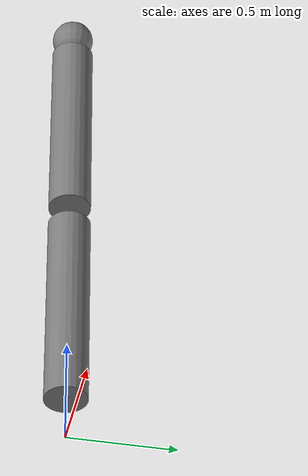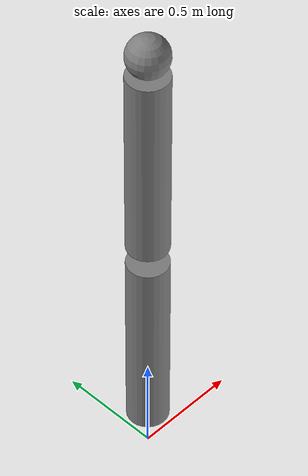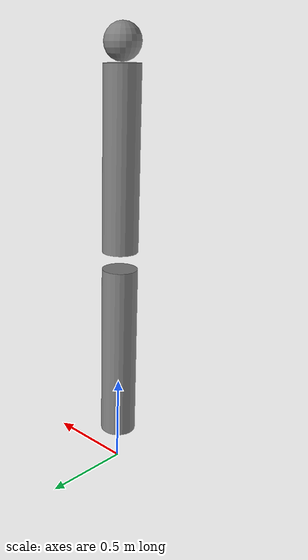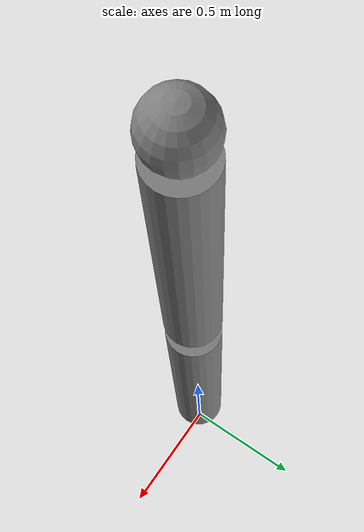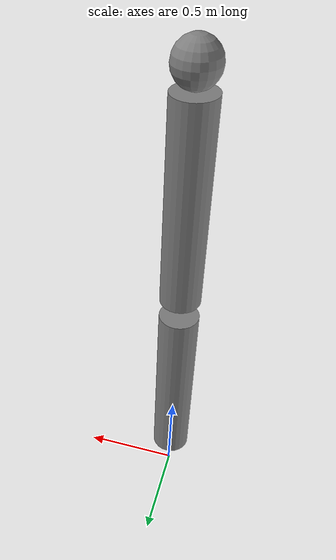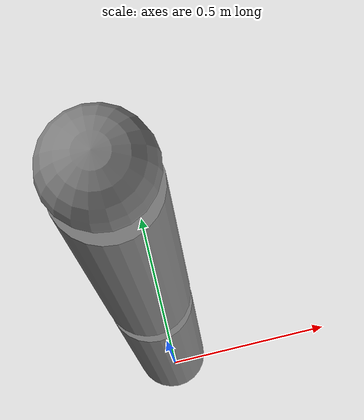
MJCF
<mujoco model="panda_description">
  <compiler angle="radian" autolimits="true"/>
  <worldbody>
    <body name="panda_link1" pos="0 0 0.1">
      <inertial pos="0 0 0.5" mass="1" diaginertia="0.0858 0.0858 0.005"/>
      <joint name="panda_joint1" pos="0 0 0" axis="1 0 0" range="-2.8973 2.8973"/>
      <geom size="0.1 0.5" pos="0 0 0.6" type="cylinder" contype="0" conaffinity="0" group="1" density="0"/>
      <geom size="0.1 0.5" pos="0 0 0.6" type="cylinder"/>
      <body name="panda_link2" pos="0 0 1.1">
        <inertial pos="0 0 0.50007" mass="1.0001" diaginertia="0.0858997 0.0858997 0.00505"/>
        <joint name="panda_joint2" pos="0 0 0" axis="0 1 0" range="-2.8973 2.8973"/>
        <geom size="0.1 0.5" pos="0 0 0.6" type="cylinder" contype="0" conaffinity="0" group="1" density="0"/>
        <geom size="0.1 0.5" pos="0 0 0.6" type="cylinder"/>
        <geom size="0.1" pos="0 0 1.205" contype="0" conaffinity="0" group="1" density="0"/>
        <geom name='panda_link3' size="0.01" pos="0 0 1.2"/>
      </body>
    </body>
  </worldbody>
  <actuator>
    <velocity joint="panda_joint1" ctrlrange="-2.0 2.0" kv='100' ctrllimited="true" />
  </actuator>
</mujoco>
